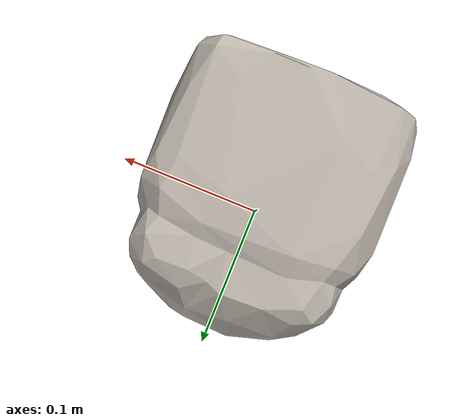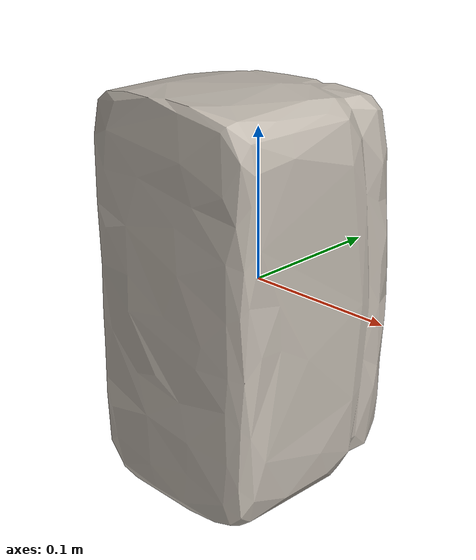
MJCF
<mujoco model="Bread_4">
  <compiler autolimits="true" boundmass="0.01" angle="radian"/>
  <default>
    <default class="/">
      <default class="__VISUAL_MJT__">
        <geom contype="0" conaffinity="0" group="0"/>
      </default>
      <default class="__STRUCTURAL_MJT__">
        <geom contype="8" conaffinity="15" group="4" friction="0.90000000000000002 0.90000000000000002 0.001" solref="0.025000000000000001 1" solimp="0.998 0.998 0.001"/>
      </default>
      <default class="__DYNAMIC_MJT__">
        <geom contype="1" conaffinity="15" group="4" friction="0.90000000000000002 0.90000000000000002 0.001" solref="0.025000000000000001 1" solimp="0.998 0.998 0.001"/>
      </default>
    </default>
  </default>
  <asset>
    <texture name="Bread2_Mat1" type="2d" file="Bread2_AlbedoTransparency.png"/>
    <material name="material_Bread2_Mat1" class="/" texture="Bread2_Mat1" specular="0.5" shininess="0.5" rgba="1 1 1 1"/>
    <mesh name="Bread_4_bread2_a_mesh" class="/" file="Bread_4_bread2_a_mesh/Bread_4_bread2_a_mesh.obj" scale="1 1 1"/>
  </asset>
  <worldbody>
    <body name="Bread_4">
      <joint name="Bread_4_free" class="/" type="free" pos="0 0 0" axis="0 0 1" stiffness="0" range="0 0" armature="0" damping="0.10000000000000001" frictionloss="0"/>
      <body name="Bread_4_bread2_a_mesh" pos="-0 -0.00156 0" quat="1 0 0 0">
        <geom name="Bread_4_bread2_a_mesh" class="__VISUAL_MJT__" type="mesh" material="material_Bread2_Mat1" shellinertia="false" mesh="Bread_4_bread2_a_mesh"/>
        <geom name="Bread_4_PrimitiveCollider_0" class="__DYNAMIC_MJT__" type="box" size="0.071059107780456543 0.051471471786499023 0.13298645615577698" rgba="0 1 0 1" pos="-0 -0.029446840286254883 0" quat="1 0 0 0"/>
        <geom name="Bread_4_PrimitiveCollider_1" class="__DYNAMIC_MJT__" type="capsule" size="0.067791208624839783 0.066073834896087646" rgba="0 1 0 1" pos="-0 0.016246676445007324 1.1026859283447266e-06" quat="1.517286444557021e-06 0.99999999999884892 0 0"/>
      </body>
    </body>
  </worldbody>
</mujoco>
